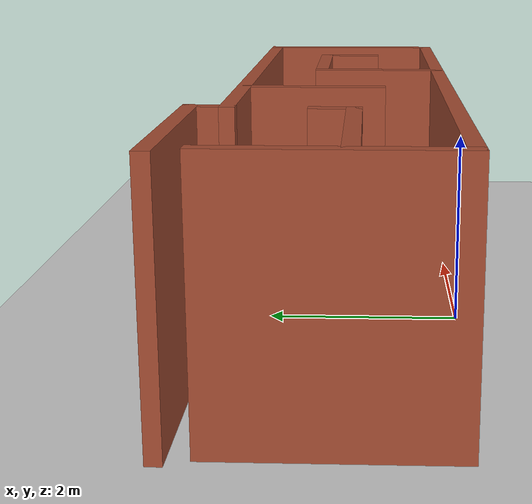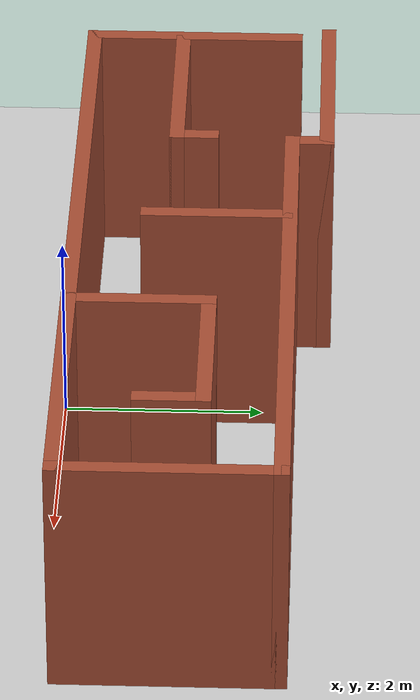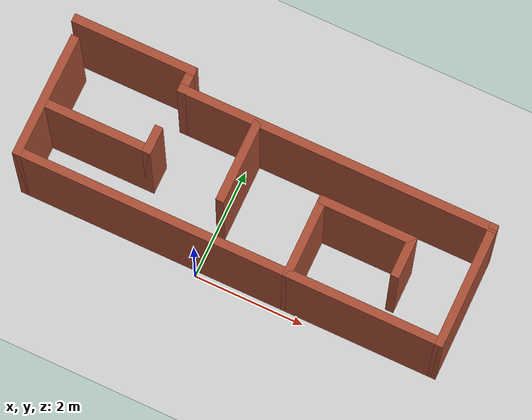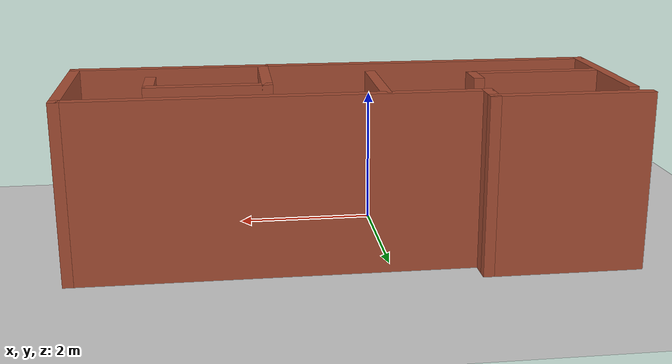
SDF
<sdf version="1.7">
 <world name="default">
  <light name="sun" type="directional">
   <pose>0 0 10 0 -0 0</pose>
   <diffuse>0.8 0.8 0.8 1</diffuse>
   <specular>0.2 0.2 0.2 1</specular>
   <attenuation>
    <range>1000</range>
    <constant>0.9</constant>
    <linear>0.01</linear>
    <quadratic>0.001</quadratic>
   </attenuation>
   <direction>-0.5 0.1 -0.9</direction>
   <spot><inner_angle>0</inner_angle><outer_angle>0</outer_angle><falloff>0</falloff></spot>
  </light>
  <model name="ground_plane">
   <static>1</static>
   <link name="link">
    <collision name="collision">
     <geometry><plane><normal>0 0 1</normal><size>100 100</size></plane></geometry>
     <surface>
      <contact><collide_bitmask>65535</collide_bitmask></contact>
      <friction><ode><mu>100</mu><mu2>50</mu2></ode></friction>
     </surface>
    </collision>
    <visual name="visual">
     <cast_shadows>0</cast_shadows>
     <geometry><plane><normal>0 0 1</normal><size>100 100</size></plane></geometry>
     <material>
      <script><uri>file://media/materials/scripts/gazebo.material</uri><name>Gazebo/Grey</name></script>
     </material>
    </visual>
   </link>
  </model>
  <gravity>0 0 -9.8</gravity>
  <magnetic_field>6e-06 2.3e-05 -4.2e-05</magnetic_field>
  <atmosphere type="adiabatic"/>
  <physics type="ode">
   <max_step_size>0.001</max_step_size>
   <real_time_factor>1</real_time_factor>
   <real_time_update_rate>1000</real_time_update_rate>
  </physics>
  <scene><ambient>0.4 0.4 0.4 1</ambient><background>0.7 0.7 0.7 1</background><shadows>1</shadows></scene>
  <spherical_coordinates>
   <surface_model>EARTH_WGS84</surface_model>
   <latitude_deg>0</latitude_deg>
   <longitude_deg>0</longitude_deg>
   <elevation>0</elevation>
   <heading_deg>0</heading_deg>
  </spherical_coordinates>
  <model name="kbot_house">
   <pose>0.495738 1.44323 0 0 -0 0</pose>
   <link name="Wall_0">
    <collision name="Wall_0_Collision">
     <geometry><box><size>2.25 0.15 2.5</size></box></geometry>
     <pose>0 0 1.25 0 -0 0</pose>
    </collision>
    <visual name="Wall_0_Visual">
     <pose>0 0 1.25 0 -0 0</pose>
     <geometry><box><size>2.25 0.15 2.5</size></box></geometry>
     <material>
      <script><uri>file://media/materials/scripts/gazebo.material</uri><name>Gazebo/Bricks</name></script>
      <ambient>1 1 1 1</ambient>
     </material>
     <meta><layer>0</layer></meta>
    </visual>
    <pose>-3.75 -0.2325 0 0 -0 -1.5708</pose>
   </link>
   <link name="Wall_1">
    <collision name="Wall_1_Collision">
     <geometry><box><size>7.75 0.15 2.5</size></box></geometry>
     <pose>0 0 1.25 0 -0 0</pose>
    </collision>
    <visual name="Wall_1_Visual">
     <pose>0 0 1.25 0 -0 0</pose>
     <geometry><box><size>7.75 0.15 2.5</size></box></geometry>
     <material>
      <script><uri>file://media/materials/scripts/gazebo.material</uri><name>Gazebo/Bricks</name></script>
      <ambient>1 1 1 1</ambient>
     </material>
     <meta><layer>0</layer></meta>
    </visual>
    <pose>0.05 -1.2825 0 0 -0 0</pose>
   </link>
   <link name="Wall_10">
    <collision name="Wall_10_Collision">
     <geometry><box><size>1.5 0.15 2.5</size></box></geometry>
     <pose>0 0 1.25 0 -0 0</pose>
    </collision>
    <visual name="Wall_10_Visual">
     <pose>0 0 1.25 0 -0 0</pose>
     <geometry><box><size>1.5 0.15 2.5</size></box></geometry>
     <material>
      <script><uri>file://media/materials/scripts/gazebo.material</uri><name>Gazebo/Bricks</name></script>
      <ambient>1 1 1 1</ambient>
     </material>
     <meta><layer>0</layer></meta>
    </visual>
    <pose>-0.39 0.0925 0 0 -0 -1.5708</pose>
   </link>
   <link name="Wall_12">
    <collision name="Wall_12_Collision">
     <geometry><box><size>1.5 0.15 2.5</size></box></geometry>
     <pose>0 0 1.25 0 -0 0</pose>
    </collision>
    <visual name="Wall_12_Visual">
     <pose>0 0 1.25 0 -0 0</pose>
     <geometry><box><size>1.5 0.15 2.5</size></box></geometry>
     <material>
      <script><uri>file://media/materials/scripts/gazebo.material</uri><name>Gazebo/Bricks</name></script>
      <ambient>1 1 1 1</ambient>
     </material>
     <meta><layer>0</layer></meta>
    </visual>
    <pose>1.13 -0.6075 0 0 -0 1.5708</pose>
   </link>
   <link name="Wall_13">
    <collision name="Wall_13_Collision">
     <geometry><box><size>1.75 0.15 2.5</size></box></geometry>
     <pose>0 0 1.25 0 -0 0</pose>
    </collision>
    <visual name="Wall_13_Visual">
     <pose>0 0 1.25 0 -0 0</pose>
     <geometry><box><size>1.75 0.15 2.5</size></box></geometry>
     <material>
      <script><uri>file://media/materials/scripts/gazebo.material</uri><name>Gazebo/Bricks</name></script>
      <ambient>1 1 1 1</ambient>
     </material>
     <meta><layer>0</layer></meta>
    </visual>
    <pose>1.93 0.0675 0 0 -0 0</pose>
   </link>
   <link name="Wall_14">
    <collision name="Wall_14_Collision">
     <geometry><box><size>0.75 0.15 2.5</size></box></geometry>
     <pose>0 0 1.25 0 -0 0</pose>
    </collision>
    <visual name="Wall_14_Visual">
     <pose>0 0 1.25 0 -0 0</pose>
     <geometry><box><size>0.75 0.15 2.5</size></box></geometry>
     <material>
      <script><uri>file://media/materials/scripts/gazebo.material</uri><name>Gazebo/Bricks</name></script>
      <ambient>1 1 1 1</ambient>
     </material>
     <meta><layer>0</layer></meta>
    </visual>
    <pose>2.73 -0.2325 0 0 -0 -1.5708</pose>
   </link>
   <link name="Wall_2">
    <collision name="Wall_2_Collision">
     <geometry><box><size>2.25 0.15 2.5</size></box></geometry>
     <pose>0 0 1.25 0 -0 0</pose>
    </collision>
    <visual name="Wall_2_Visual">
     <pose>0 0 1.25 0 -0 0</pose>
     <geometry><box><size>2.25 0.15 2.5</size></box></geometry>
     <material>
      <script><uri>file://media/materials/scripts/gazebo.material</uri><name>Gazebo/Bricks</name></script>
      <ambient>1 1 1 1</ambient>
     </material>
     <meta><layer>0</layer></meta>
    </visual>
    <pose>3.85 -0.2325 0 0 -0 1.5708</pose>
   </link>
   <link name="Wall_3">
    <collision name="Wall_3_Collision">
     <geometry><box><size>5.75 0.15 2.5</size></box></geometry>
     <pose>0 0 1.25 0 -0 0</pose>
    </collision>
    <visual name="Wall_3_Visual">
     <pose>0 0 1.25 0 -0 0</pose>
     <geometry><box><size>5.75 0.15 2.5</size></box></geometry>
     <material>
      <script><uri>file://media/materials/scripts/gazebo.material</uri><name>Gazebo/Bricks</name></script>
      <ambient>1 1 1 1</ambient>
     </material>
     <meta><layer>0</layer></meta>
    </visual>
    <pose>1.05 0.8175 0 0 -0 3.14159</pose>
   </link>
   <link name="Wall_4">
    <collision name="Wall_4_Collision">
     <geometry><box><size>0.5 0.15 2.5</size></box></geometry>
     <pose>0 0 1.25 0 -0 0</pose>
    </collision>
    <visual name="Wall_4_Visual">
     <pose>0 0 1.25 0 -0 0</pose>
     <geometry><box><size>0.5 0.15 2.5</size></box></geometry>
     <material>
      <script><uri>file://media/materials/scripts/gazebo.material</uri><name>Gazebo/Bricks</name></script>
      <ambient>1 1 1 1</ambient>
     </material>
     <meta><layer>0</layer></meta>
    </visual>
    <pose>-1.75 0.9925 0 0 -0 1.5708</pose>
   </link>
   <link name="Wall_5">
    <collision name="Wall_5_Collision">
     <geometry><box><size>2.25 0.15 2.5</size></box></geometry>
     <pose>0 0 1.25 0 -0 0</pose>
    </collision>
    <visual name="Wall_5_Visual">
     <pose>0 0 1.25 0 -0 0</pose>
     <geometry><box><size>2.25 0.15 2.5</size></box></geometry>
     <material>
      <script><uri>file://media/materials/scripts/gazebo.material</uri><name>Gazebo/Bricks</name></script>
      <ambient>1 1 1 1</ambient>
     </material>
     <meta><layer>0</layer></meta>
    </visual>
    <pose>-2.8 1.1675 0 0 -0 3.14159</pose>
   </link>
   <link name="Wall_7">
    <collision name="Wall_7_Collision">
     <geometry><box><size>2 0.15 2.5</size></box></geometry>
     <pose>0 0 1.25 0 -0 0</pose>
    </collision>
    <visual name="Wall_7_Visual">
     <pose>0 0 1.25 0 -0 0</pose>
     <geometry><box><size>2 0.15 2.5</size></box></geometry>
     <material>
      <script><uri>file://media/materials/scripts/gazebo.material</uri><name>Gazebo/Bricks</name></script>
      <ambient>1 1 1 1</ambient>
     </material>
     <meta><layer>0</layer></meta>
    </visual>
    <pose>-2.755 -0.3525 0 0 -0 0</pose>
   </link>
   <link name="Wall_8">
    <collision name="Wall_8_Collision">
     <geometry><box><size>0.5 0.15 2.5</size></box></geometry>
     <pose>0 0 1.25 0 -0 0</pose>
    </collision>
    <visual name="Wall_8_Visual">
     <pose>0 0 1.25 0 -0 0</pose>
     <geometry><box><size>0.5 0.15 2.5</size></box></geometry>
     <material>
      <script><uri>file://media/materials/scripts/gazebo.material</uri><name>Gazebo/Bricks</name></script>
      <ambient>1 1 1 1</ambient>
     </material>
     <meta><layer>0</layer></meta>
    </visual>
    <pose>-1.83 -0.1775 0 0 -0 1.5708</pose>
   </link>
   <static>1</static>
  </model>
 </world>
</sdf>
